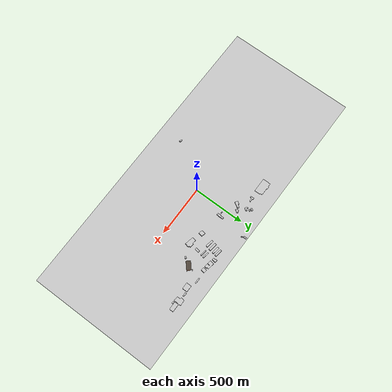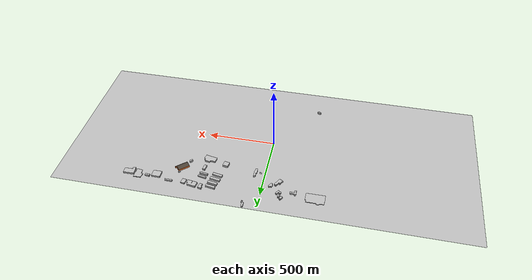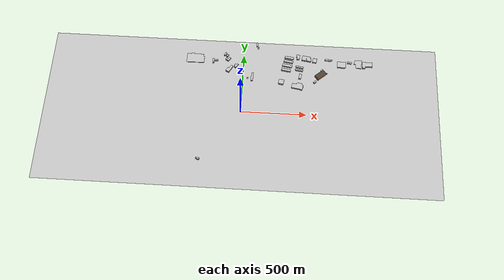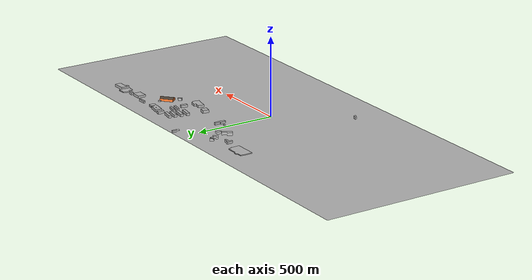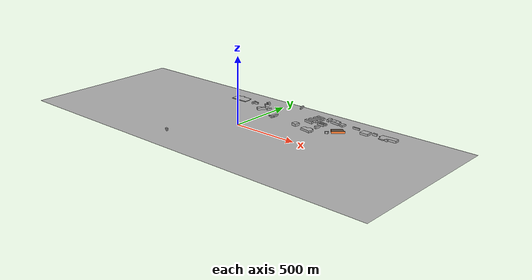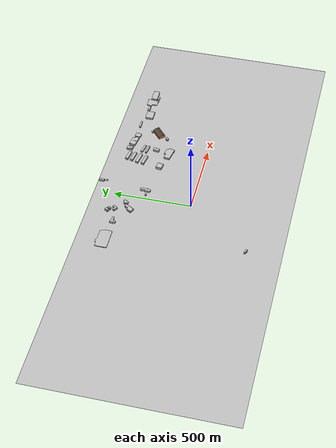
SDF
<?xml version="1.0" ?>
<sdf version="1.5">
  <model name="purdue_airport">
    <pose>0 0 0 0 0 0</pose>
    <static>true</static>
    <link name="terrain">
      <visual name="visual">
        <geometry>
          <mesh><uri>model://purdue_airport/media/terrain.dae</uri></mesh>
        </geometry>
        <pose>0 0 -3.5 0 0 0</pose>
      </visual>
      <collision name="collision">
        <geometry>
          <mesh><uri>model://purdue_airport/media/terrain.dae</uri></mesh>
        </geometry>
        <pose>0 0 -3.5 0 0 0</pose>
      </collision>
    </link>

    <link name="buildings">
      <visual name="visual">
        <geometry>
          <mesh><uri>model://purdue_airport/media/buildings.dae</uri></mesh>
        </geometry>
        <pose>0 0 -3.5 0 0 0</pose>
      </visual>
      <collision name="collision">
        <geometry>
          <mesh><uri>model://purdue_airport/media/buildings.dae</uri></mesh>
        </geometry>
        <pose>0 0 -3.5 0 0 0</pose>
      </collision>
    </link>
  </model>
</sdf>
